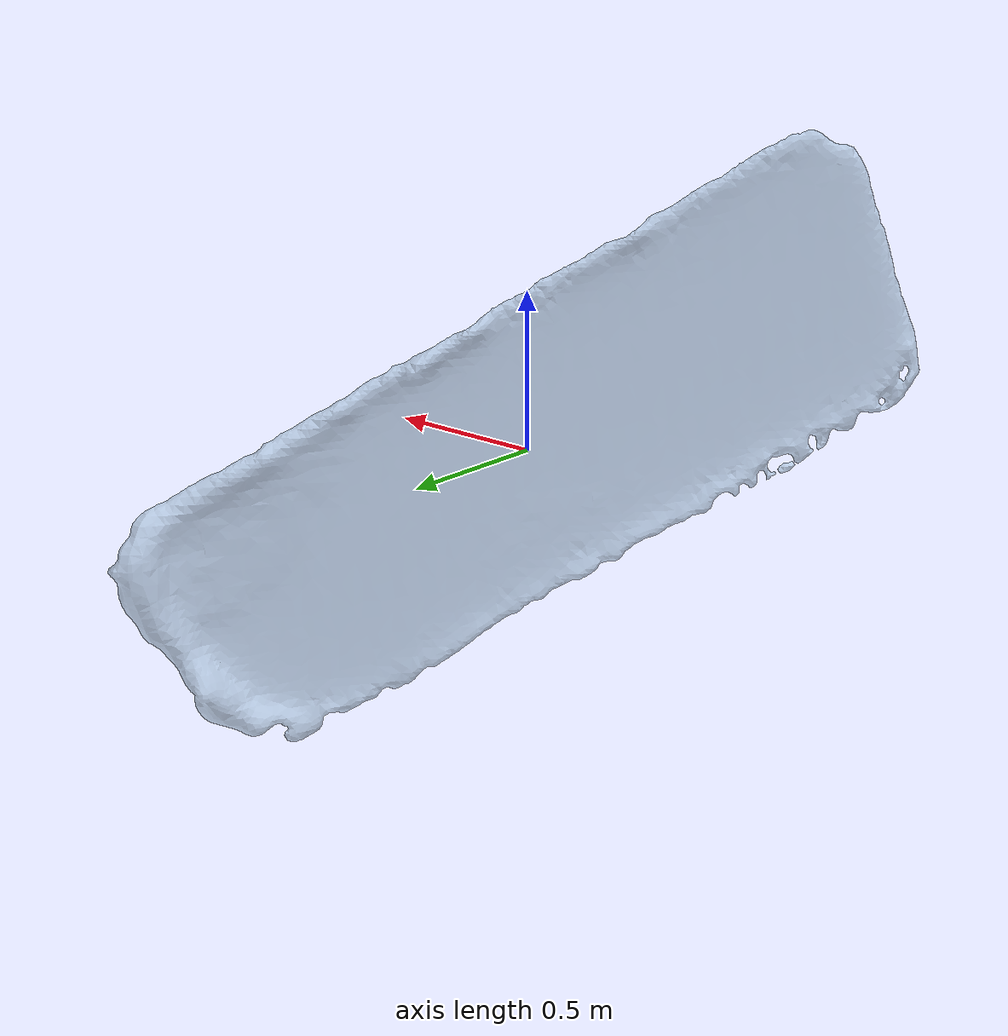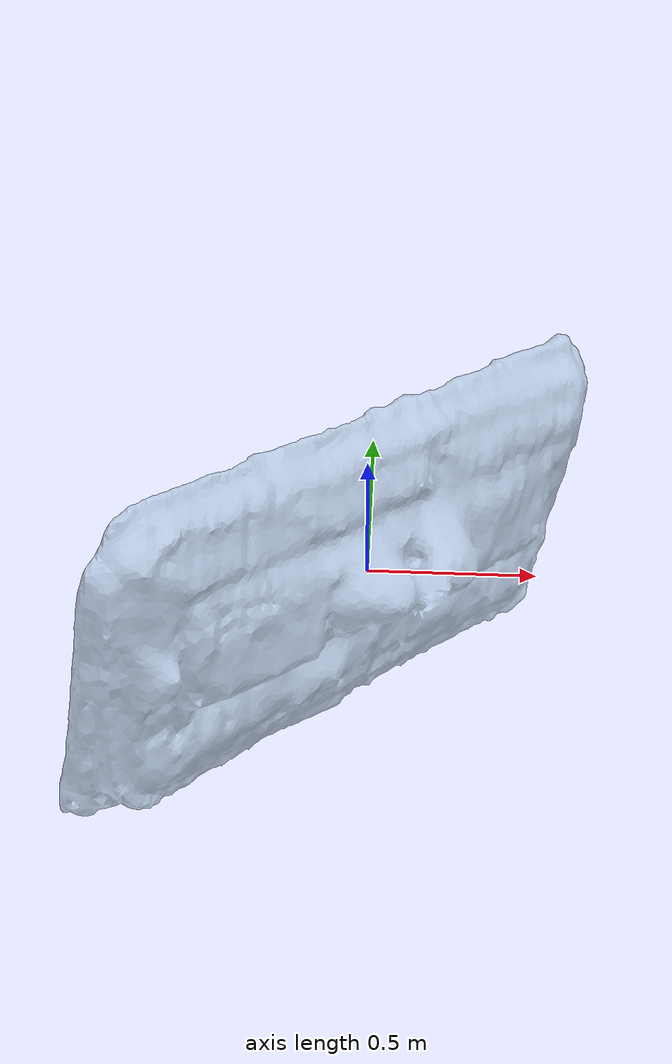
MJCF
<mujoco model="mop_bottom">
    <compiler meshdir="./"/>

    <default>
        <geom friction="0.9 0.5 0.5" rgba="0.7 0.8 0.9 0.7"/>
        <joint damping="0.5"/>
    </default>

    <asset>
        <mesh name="mop_bottom_mesh" file="mop_bottom.obj" scale="1 1 1"/>
    </asset>

    <worldbody>
        <body name="mop_bottom_link">
            <inertial pos="0 0 0" mass="0.1" diaginertia="0.002 0.002 0.002"/>
            <geom name="mop_bottom" type="mesh" mesh="mop_bottom_mesh"
                  pos="0 0 0" quat="1 0 0 0"
                  rgba="0.7 0.8 0.9 0.7"
                  friction="0.9 0.5 0.5"
                  solref="0.02 1"
                  solimp="0.9 0.95 0.001"/>
        </body>
    </worldbody>
</mujoco>
